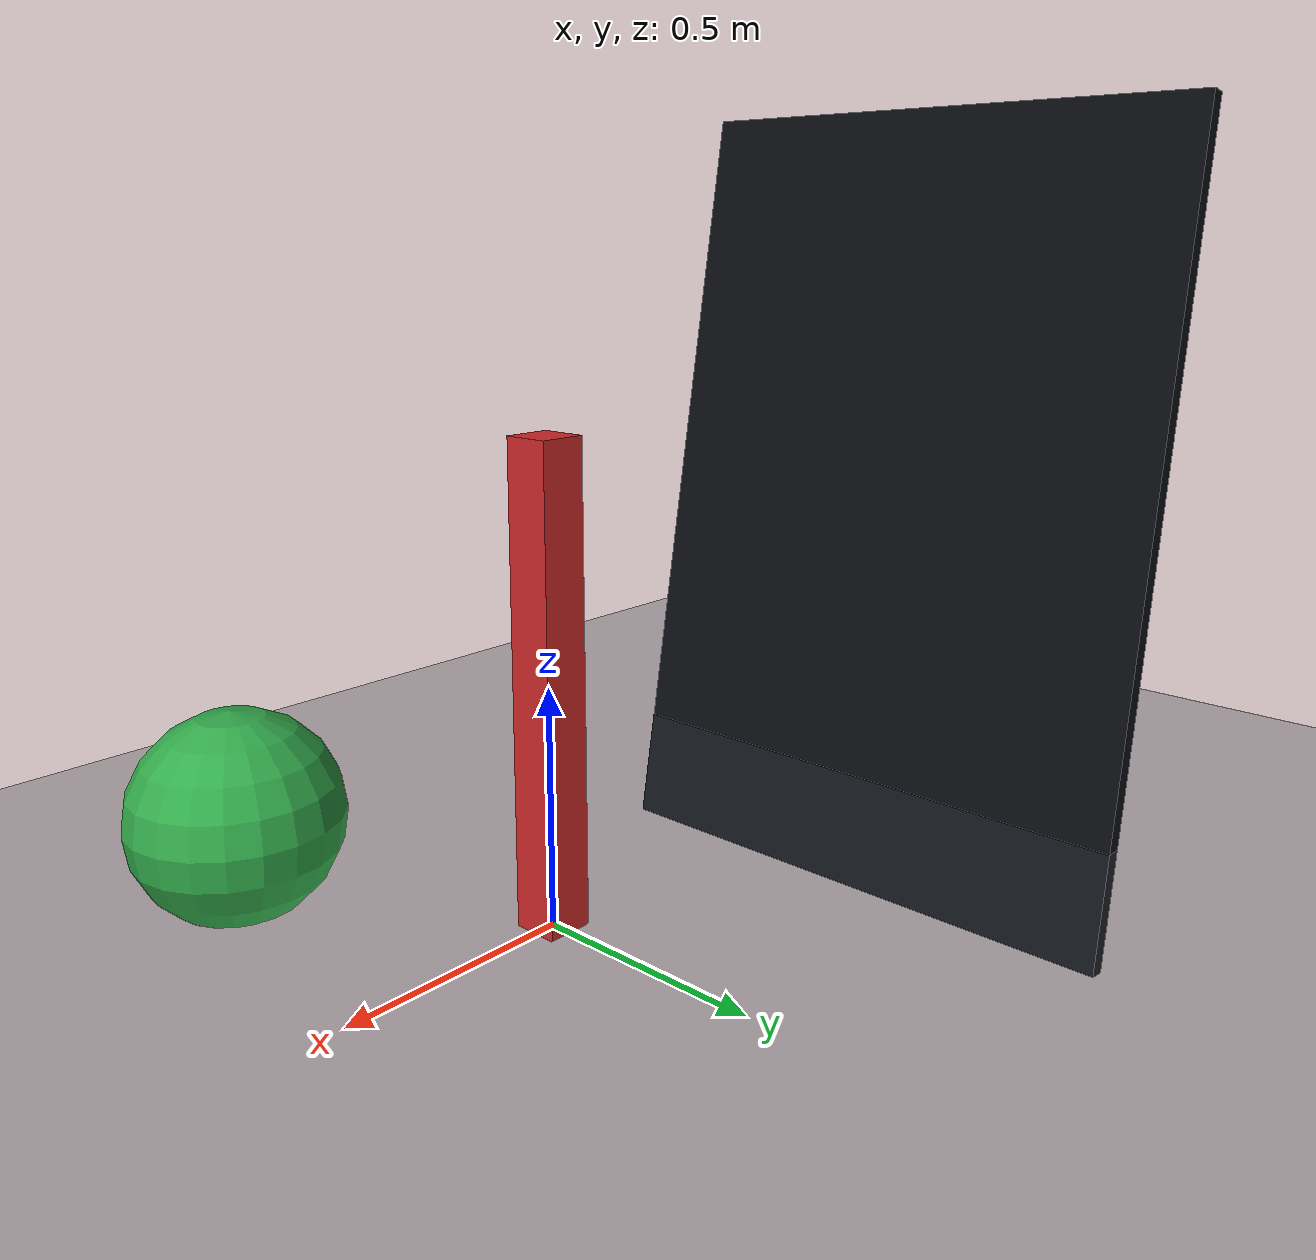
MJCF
<mujoco model="Reflection: phong color + textured">

  <asset>
    <texture name="sky" type="skybox" builtin="gradient" rgb1=".18 .22 .30" rgb2=".55 .58 .62" width="32" height="512"/>
    <texture name="ibl" type="cube" builtin="gradient" rgb1=".32 .35 .40" rgb2=".58 .56 .52" width="32" height="32"/>
    <texture name="grid" type="2d" builtin="checker" rgb1=".05 .06 .09" rgb2=".42 .45 .50" width="300" height="300"/>
    <material name="floor"  texture="grid" texrepeat="3 3" texuniform="true" reflectance=".5"/>
    <material name="mirror" rgba=".04 .05 .07 1" reflectance=".85"/>
    <material name="post"   rgba=".82 .16 .16 1"/>
    <material name="ball"   rgba=".20 .68 .30 1"/>
  </asset>

  <worldbody>
    <camera name="view" pos="2.997 -1.006 2.846" xyaxes="0.250 0.968 0.000 -0.455 0.118 0.882"/>
    <light pos="1.5 0.6 2.6" dir="-0.6 -0.2 -2" cutoff="55" range="20" intensity="800000"
           castshadow="true" ambient=".1 .1 .12" type="spot"/>
    <light type="image" texture="ibl" intensity="8000"/>

    <geom name="floor"  type="plane" size="3 3 .1" material="floor"/>
    <geom name="mirror" type="box"   size="1.0 0.7 0.02" material="mirror" pos="-1.2 0 0.7" euler="0 80 0"/>
    <geom name="post"   type="box"    material="post" size=".05 .05 .5" pos="0 0 0.5"/>
    <geom name="ball"   type="sphere" material="ball" size=".22" pos="0.4 -0.5 0.22"/>
  </worldbody>
</mujoco>
